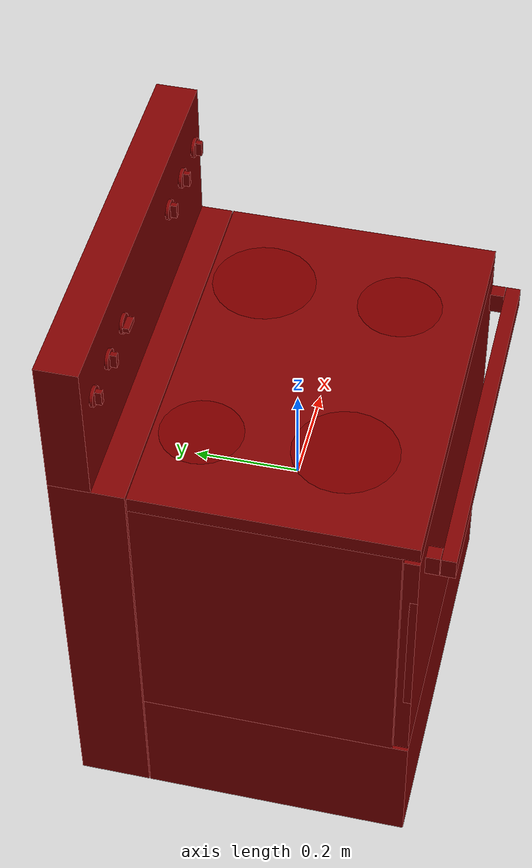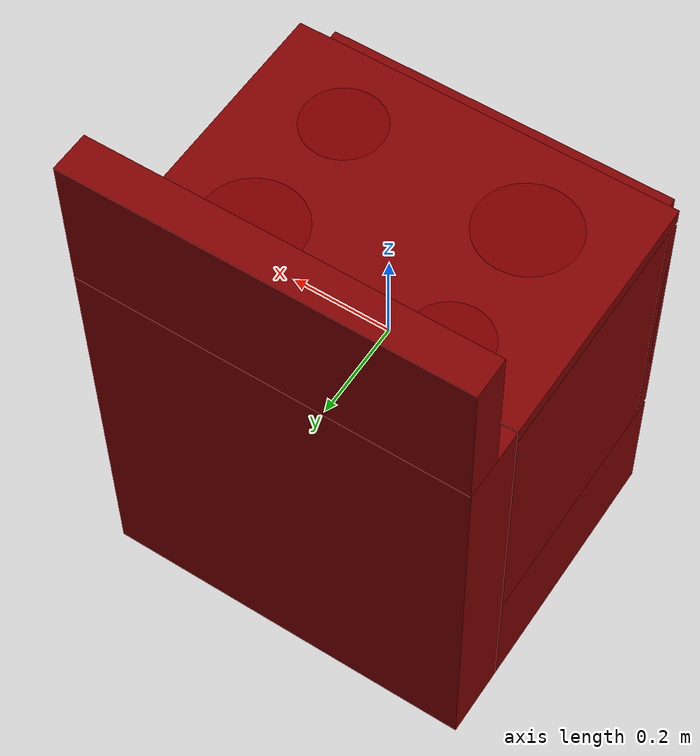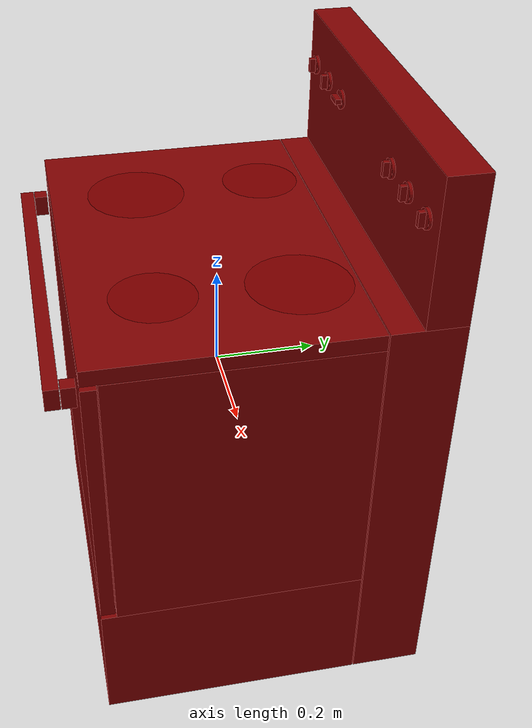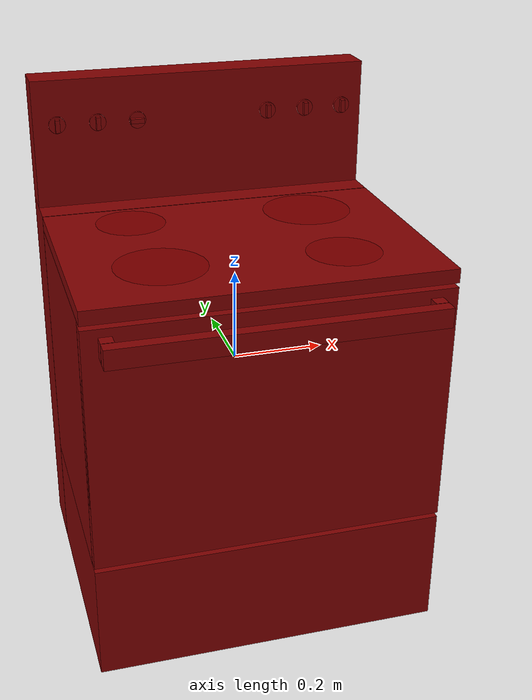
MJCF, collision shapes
<?xml version='1.0' encoding='UTF-8'?>
<mujoco model="model">
  <option timestep="0.002" gravity="0.0 0.0 -9.81"/>
  <compiler angle="radian"/>
  <asset>
    <mesh file="visuals/door.obj" name="door_vis"/>
    <mesh file="visuals/door_Clear.obj" name="door_Clear_vis"/>
    <mesh file="visuals/knob_front_left.obj" name="knob_front_left_vis"/>
    <mesh file="visuals/knob_front_right.obj" name="knob_front_right_vis"/>
    <mesh file="visuals/knob_rear_left.obj" name="knob_rear_left_vis"/>
    <mesh file="visuals/knob_rear_right.obj" name="knob_rear_right_vis"/>
    <mesh file="visuals/knob_temp.obj" name="knob_temp_vis"/>
    <mesh file="visuals/knob_time.obj" name="knob_time_vis"/>
    <mesh file="visuals/rack0.obj" name="rack0_vis"/>
    <mesh file="visuals/rack1.obj" name="rack1_vis"/>
    <mesh file="visuals/Body001.obj" name="Body001_vis"/>
    <texture file="visuals/T_BC001.png" name="Body001_material" type="2d"/>
    <material name="Body001_material" rgba="1 1 1 1.0" texture="Body001_material" shininess="0.1" specular="0.5"/>
    <texture file="visuals/T_BC001.png" name="door_material" type="2d"/>
    <material name="door_material" rgba="1 1 1 1.0" texture="door_material" shininess="0.1" specular="5"/>
    <material name="door_Clear_material" rgba="0.12735895812511444 0.12735895812511444 0.12735895812511444 0.8" shininess="0.5" specular="0.3103448502657381"/>
    <texture file="visuals/T_BC001.png" name="knob_front_left_material" type="2d"/>
    <material name="knob_front_left_material" rgba="1 1 1 1.0" texture="knob_front_left_material" shininess="0.1" specular="5"/>
    <texture file="visuals/T_BC001.png" name="knob_front_right_material" type="2d"/>
    <material name="knob_front_right_material" rgba="1 1 1 1.0" texture="knob_front_right_material" shininess="0.1" specular="5"/>
    <texture file="visuals/T_BC001.png" name="knob_rear_left_material" type="2d"/>
    <material name="knob_rear_left_material" rgba="1 1 1 1.0" texture="knob_rear_left_material" shininess="0.1" specular="5"/>
    <texture file="visuals/T_BC001.png" name="knob_rear_right_material" type="2d"/>
    <material name="knob_rear_right_material" rgba="1 1 1 1.0" texture="knob_rear_right_material" shininess="0.1" specular="5"/>
    <texture file="visuals/T_BC001.png" name="knob_temp_material" type="2d"/>
    <material name="knob_temp_material" rgba="1 1 1 1.0" texture="knob_temp_material" shininess="0.1" specular="5"/>
    <texture file="visuals/T_BC001.png" name="knob_time_material" type="2d"/>
    <material name="knob_time_material" rgba="1 1 1 1.0" texture="knob_time_material" shininess="0.1" specular="5"/>
    <texture file="visuals/T_BC001.png" name="rack0_material" type="2d"/>
    <material name="rack0_material" rgba="1 1 1 1.0" texture="rack0_material" shininess="0.1" specular="5"/>
    <texture file="visuals/T_BC001.png" name="rack1_material" type="2d"/>
    <material name="rack1_material" rgba="1 1 1 1.0" texture="rack1_material" shininess="0.1" specular="5"/>
  </asset>
  <default>
    <default class="visual">
      <geom conaffinity="0" contype="0" group="1" type="mesh"/>
    </default>
    <default class="collision">
      <geom group="0" rgba="0.5 0 0 0.5"/>
    </default>
    <default class="spawn">
      <geom group="0" rgba="1 1 1 0.5" contype="0" conaffinity="0"/>
      <site group="0" rgba="1 1 1 0.5"/>
    </default>
    <default class="region">
      <geom group="1" conaffinity="0" contype="0" rgba="0 1 0 0"/>
    </default>
  </default>
  <worldbody>
    <body>
      <body name="object">
        <geom mesh="Body001_vis" type="mesh" solimp="0.998 0.998 0.001" solref="0.001 1" friction="0.95 0.3 0.1" class="visual" material="Body001_material"/>
        <geom class="collision" type="box" pos="0.00000000 0.28773725 -0.13877900" size="0.3806391656398773 0.06934699416160583 0.4276793599128723" quat="1.0 0.0 0.0 0.0"/>
        <geom class="collision" type="box" pos="0.00000000 0.31810200 0.43091512" size="0.38063934445381165 0.03898267447948456 0.14246723055839539" quat="1.0 0.0 0.0 0.0"/>
        <geom class="collision" type="box" pos="0.00000000 -0.04190081 0.27361840" size="0.38063955307006836 0.2578233480453491 0.01528517808765173" quat="1.0 0.0 0.0 0.0"/>
        <geom class="collision" type="box" pos="0.00000000 -0.04190084 -0.43425706" size="0.3806397318840027 0.25782346725463867 0.1322038769721985" quat="1.0 0.0 0.0 0.0"/>
        <geom class="collision" type="box" pos="-0.34366122 -0.02676387 -0.02269453" size="0.036980871111154556 0.24268659949302673 0.2797034680843353" quat="1.0 0.0 0.0 0.0"/>
        <geom class="collision" type="box" pos="0.34331039 -0.02676387 -0.02269454" size="0.037331726402044296 0.2426867038011551 0.27970367670059204" quat="1.0 0.0 0.0 0.0"/>
        <geom class="collision" type="box" pos="0.00152631 -0.02676387 -0.25557634" size="0.3090246319770813 0.24268679320812225 0.04682393744587898" quat="1.0 0.0 0.0 0.0"/>
        <geom class="collision" type="box" pos="0.00152631 -0.02676387 0.21112446" size="0.3090248107910156 0.2426868975162506 0.04414474591612816" quat="1.0 0.0 0.0 0.0"/>
        <geom class="collision" type="box" pos="0.30031326 -0.01840548 0.10591764" size="0.005835832562297583 0.23432861268520355 0.008943891152739525" quat="1.0 0.0 0.0 0.0"/>
        <geom class="collision" type="box" pos="0.30031326 -0.01840548 0.01064280" size="0.005835835821926594 0.23432870209217072 0.006055808626115322" quat="1.0 0.0 0.0 0.0"/>
        <geom class="collision" type="box" pos="0.30031326 -0.01840548 -0.16668797" size="0.005835838615894318 0.23432880640029907 0.008943903259932995" quat="1.0 0.0 0.0 0.0"/>
        <geom class="collision" type="box" pos="0.30031326 -0.01840548 -0.07734233" size="0.005835841875523329 0.23432889580726624 0.006055814679712057" quat="1.0 0.0 0.0 0.0"/>
        <geom class="collision" type="box" pos="-0.30044070 -0.01840548 -0.07734233" size="0.005835844669491053 0.2343290001153946 0.006055817939341068" quat="1.0 0.0 0.0 0.0"/>
        <geom class="collision" type="box" pos="-0.30044070 -0.01840548 -0.16668797" size="0.005835847929120064 0.23432908952236176 0.008943920955061913" quat="1.0 0.0 0.0 0.0"/>
        <geom class="collision" type="box" pos="-0.30044070 -0.01840548 0.01064280" size="0.005835850723087788 0.23432917892932892 0.006055823992937803" quat="1.0 0.0 0.0 0.0"/>
        <geom class="collision" type="box" pos="-0.30044070 -0.01840548 0.10591764" size="0.005835853982716799 0.23432928323745728 0.008943933062255383" quat="1.0 0.0 0.0 0.0"/>
        <body name="door">
          <joint axis="1.0 0.0 0.0" pos="0.00047386 -0.29872564 -0.29060480" limited="true" name="door_joint" range="0.0 1.5707963267948966" type="hinge" damping="1" frictionloss="1" armature=".01" stiffness="0.05"/>
          <geom mesh="door_vis" type="mesh" solimp="0.998 0.998 0.001" solref="0.001 1" friction="0.95 0.3 0.1" class="visual" material="door_material"/>
          <geom class="collision" type="box" pos="0.00000001 -0.28556258 -0.02133653" size="0.3806423842906952 0.014163072220981121 0.2701687812805176" quat="1.0 0.0 0.0 0.0" name="door_main"/>
          <geom class="collision" type="box" pos="0.00000001 -0.29241508 -0.00293571" size="0.3806423842906952 0.007310488261282444 0.1463773250579834" quat="1.0 0.0 0.0 0.0"/>
          <geom class="collision" type="box" pos="-0.33332205 -0.31626445 0.21169895" size="0.01340613141655922 0.012864393182098866 0.021215109154582024" quat="1.0 0.0 0.0 0.0"/>
          <geom class="collision" type="box" pos="0.33292553 -0.31626445 0.21169895" size="0.013406133279204369 0.012864393182098866 0.021215109154582024" quat="1.0 0.0 0.0 0.0"/>
          <geom class="collision" type="box" pos="-0.00019825 -0.34403739 0.21169895" size="0.34652987122535706 0.013490837998688221 0.021215109154582024" quat="1.0 0.0 0.0 0.0" name="door_handle_main"/>
          <body name="door_Clear">
            <geom mesh="door_Clear_vis" type="mesh" solimp="0.998 0.998 0.001" solref="0.001 1" friction="0.95 0.3 0.1" class="visual" material="door_Clear_material"/>
            <geom class="collision" type="box" pos="0.00000001 -0.29241508 -0.00293571" size="0.3806423842906952 0.007310488261282444 0.1463773250579834" quat="1.0 0.0 0.0 0.0"/>
          </body>
        </body>
        <body name="knob_front_left">
          <joint axis="0.0 -1.0 0.0" pos="-0.32836023 0.27114728 0.47613841" limited="true" name="knob_front_left_joint" range="0.0 3.6651914291880923" type="hinge" damping="0.05" armature="1" frictionloss="0.75"/>
          <geom mesh="knob_front_left_vis" type="mesh" solimp="0.998 0.998 0.001" solref="0.001 1" friction="0.95 0.3 0.1" class="visual" material="knob_front_left_material"/>
          <geom class="collision" type="cylinder" pos="-0.32802793 0.27478260 0.47624242" size="0.018600063398480415 0.0029888267163187265" quat="0.7071067094802856 0.7071068286895752 0.0 0.0" friction="100 0.5 0.01"/>
          <geom class="collision" type="box" pos="-0.32804888 0.26617646 0.47623983" size="0.0049294340424239635 0.006057090125977993 0.013924617320299149" quat="1.0 0.0 0.0 0.0" name="knob_front_left_main" friction="100 0.5 0.01"/>
        </body>
        <body name="knob_front_right">
          <joint axis="0.0 -1.0 0.0" pos="0.33267894 0.27114728 0.47613841" limited="true" name="knob_front_right_joint" range="0.0 3.6651914291880923" type="hinge" damping="0.05" frictionloss="0.75" armature="1"/>
          <geom mesh="knob_front_right_vis" type="mesh" solimp="0.998 0.998 0.001" solref="0.001 1" friction="0.95 0.3 0.1" class="visual" material="knob_front_right_material"/>
          <geom class="collision" type="box" pos="0.33227965 0.26617646 0.47623983" size="0.0049294340424239635 0.006057090125977993 0.013924617320299149" quat="1.0 0.0 0.0 0.0" name="knob_front_right_main" friction="100 0.5 0.01"/>
          <geom class="collision" type="cylinder" pos="0.33230060 0.27478260 0.47624242" size="0.018600063398480415 0.0029888267163187265" quat="0.7071067094802856 0.7071068286895752 0.0 0.0" friction="100 0.5 0.01"/>
        </body>
        <body name="knob_rear_left">
          <joint axis="0.0 -1.0 0.0" pos="-0.23796098 0.27114728 0.47613841" limited="true" name="knob_rear_left_joint" range="0.0 3.6651914291880923" type="hinge" damping="0.05" armature="1" frictionloss="0.75"/>
          <geom mesh="knob_rear_left_vis" type="mesh" solimp="0.998 0.998 0.001" solref="0.001 1" friction="0.95 0.3 0.1" class="visual" material="knob_rear_left_material"/>
          <geom class="collision" type="box" pos="-0.23812278 0.26617646 0.47623983" size="0.0049294340424239635 0.006057090125977993 0.013924617320299149" quat="1.0 0.0 0.0 0.0" name="knob_rear_left_main" friction="100 0.5 0.01"/>
          <geom class="collision" type="cylinder" pos="-0.23810183 0.27478260 0.47624242" size="0.018600063398480415 0.0029888267163187265" quat="0.7071067094802856 0.7071068286895752 0.0 0.0" friction="100 0.5 0.01"/>
        </body>
        <body name="knob_rear_right">
          <joint axis="0.0 -1.0 0.0" pos="0.24363425 0.27114728 0.47613841" limited="true" name="knob_rear_right_joint" range="0.0 3.6651914291880923" type="hinge" damping="0.05" frictionloss="0.75" armature="1"/>
          <geom mesh="knob_rear_right_vis" type="mesh" solimp="0.998 0.998 0.001" solref="0.001 1" friction="0.95 0.3 0.1" class="visual" material="knob_rear_right_material"/>
          <geom class="collision" type="box" pos="0.24296705 0.26617646 0.47623983" size="0.0049294340424239635 0.006057090125977993 0.013924617320299149" quat="1.0 0.0 0.0 0.0" name="knob_rear_right_main" friction="100 0.5 0.01"/>
          <geom class="collision" type="cylinder" pos="0.24298801 0.27478260 0.47624242" size="0.018600063398480415 0.0029888267163187265" quat="0.7071067094802856 0.7071068286895752 0.0 0.0" friction="100 0.5 0.01"/>
        </body>
        <body name="knob_temp">
          <joint axis="0.0 1.0 0.0" pos="0.15376928 0.27114728 0.47613841" limited="true" name="knob_temp_joint" range="0.0 5.602506898901798" type="hinge" damping="0.05" armature="1" frictionloss="0.75"/>
          <geom mesh="knob_temp_vis" type="mesh" solimp="0.998 0.998 0.001" solref="0.001 1" friction="0.95 0.3 0.1" class="visual" material="knob_temp_material"/>
          <geom class="collision" type="box" pos="0.15340966 0.26617646 0.47623983" size="0.0049294340424239635 0.006057090125977993 0.013924617320299149" quat="1.0 0.0 0.0 0.0" name="knob_temp_main" friction="100 0.5 0.01"/>
          <geom class="collision" type="cylinder" pos="0.15343061 0.27478260 0.47624242" size="0.018600063398480415 0.0029888267163187265" quat="0.7071067094802856 0.7071068286895752 0.0 0.0" friction="100 0.5 0.01"/>
        </body>
        <body name="knob_time">
          <joint axis="0.0 1.0 0.0" pos="-0.14835897 0.27114728 0.47548491" limited="true" name="knob_time_joint" range="0.0 5.235987755982989" type="hinge" damping="0.05" armature="1" frictionloss="0.75"/>
          <geom mesh="knob_time_vis" type="mesh" solimp="0.998 0.998 0.001" solref="0.001 1" friction="0.95 0.3 0.1" class="visual" material="knob_time_material"/>
          <geom class="collision" type="box" pos="-0.15047948 0.26617646 0.47555688" size="0.015314821153879166 0.006057090125977993 0.0049294354394078255" quat="1.0 0.0 0.0 0.0" name="knob_time_main" friction="100 0.5 0.01"/>
          <geom class="collision" type="cylinder" pos="-0.14873384 0.27478260 0.47542113" size="0.018600063398480415 0.0029888267163187265" quat="0.7071067094802856 0.7071068286895752 0.0 0.0" friction="100 0.5 0.01"/>
        </body>
        <body name="rack0">
          <geom class="region" name="reg_rack0" type="box" pos="-7.514999999999605e-05 -0.05177400500000001 -0.02026579" size="0.29338473 0.204263845 0.039631"/>
          <joint axis="0.0 -1.0 0.0" pos="0.00002085 -0.05290608 -0.06526963" limited="true" name="rack0_joint" range="0.0 0.37" type="slide" damping="1" frictionloss="1" armature=".01" stiffness="0.05"/>
          <geom mesh="rack0_vis" type="mesh" solimp="0.998 0.998 0.001" solref="0.001 1" friction="0.95 0.3 0.1" class="visual" material="rack0_material"/>
          <geom class="collision" type="box" pos="-0.00039496 -0.05307997 -0.06457140" size="0.30155226588249207 0.20644082129001617 0.0038607490714639425" quat="1.0 0.0 0.0 0.0"/>
        </body>
        <body name="rack1">
          <geom class="region" name="reg_rack1" type="box" pos="-7.514999999999605e-05 -0.05177400500000001 0.09753503999999999" size="0.29338473 0.204263845 0.06800844"/>
          <joint axis="0.0 -1.0 0.0" pos="0.00002085 -0.05290608 0.02302140" limited="true" name="rack1_joint" range="0.0 0.37" type="slide" damping="1" frictionloss="1" armature=".01" stiffness="0.05"/>
          <geom mesh="rack1_vis" type="mesh" solimp="0.998 0.998 0.001" solref="0.001 1" friction="0.95 0.3 0.1" class="visual" material="rack1_material"/>
          <geom class="collision" type="box" pos="-0.00039496 -0.05307997 0.02392154" size="0.30155226588249207 0.20644082129001617 0.0038607490714639425" quat="1.0 0.0 0.0 0.0"/>
        </body>
        <geom class="region" name="reg_int" type="box" pos="0.00101271 -0.02609689000000001 -0.01940158" size="0.29183088 0.23750866 0.18363595"/>
        <site type="cylinder" rgba="0.5 0 0 0.5" size="0.09734878689050674 0.0001" pos="-0.18913718 -0.12916026 0.28895366" name="burner_on_front_left"/>
        <site type="cylinder" rgba="0.5 0 0 0.5" size="0.07675307989120483 0.0001" pos="-0.19991663 0.12864677 0.28895366" name="burner_on_rear_left"/>
        <site type="cylinder" rgba="0.5 0 0 0.5" size="0.07978937029838562 0.0001" pos="0.19051448 -0.15064779 0.28895366" name="burner_on_front_right"/>
        <site type="cylinder" rgba="0.5 0 0 0.5" size="0.09814763814210892 0.0001" pos="0.19729567 0.11031708 0.28895366" name="burner_on_rear_right"/>
        <site name="burner_front_left_place_site" type="cylinder" rgba="0.5 0 0 0" size="0.09734878689050674 4.999999873689376e-05" pos="-0.18913718 -0.12916026 0.28895366"/>
        <site name="burner_rear_left_place_site" type="cylinder" rgba="0.5 0 0 0" size="0.07675307989120483 4.999999873689376e-05" pos="-0.19991663 0.12864677 0.28895366"/>
        <site name="burner_front_right_place_site" type="cylinder" rgba="0.5 0 0 0" size="0.07978937029838562 4.999999873689376e-05" pos="0.19051448 -0.15064779 0.28895366"/>
        <site name="burner_rear_right_place_site" type="cylinder" rgba="0.5 0 0 0" size="0.09814763814210892 4.999999509891495e-05" pos="0.19729567 0.11031708 0.28895366"/>
        <geom class="region" name="reg_main" type="box" pos="-9.999999994736442e-09 0.028679709999999997 -0.13877899999999999" size="0.38164241 0.32940537999999997 0.42868264"/>
      </body>
    </body>
  </worldbody>
  <actuator>
    <motor name="door_joint_actuator" joint="door_joint" gear="50"/>
    <motor name="knob_front_left_joint_actuator" joint="knob_front_left_joint" gear="50"/>
    <motor name="knob_front_right_joint_actuator" joint="knob_front_right_joint" gear="50"/>
    <motor name="knob_rear_left_joint_actuator" joint="knob_rear_left_joint" gear="50"/>
    <motor name="knob_rear_right_joint_actuator" joint="knob_rear_right_joint" gear="50"/>
    <motor name="knob_temp_joint_actuator" joint="knob_temp_joint" gear="50"/>
    <motor name="knob_time_joint_actuator" joint="knob_time_joint" gear="50"/>
    <motor name="rack0_joint_actuator" joint="rack0_joint" gear="50"/>
    <motor name="rack1_joint_actuator" joint="rack1_joint" gear="50"/>
  </actuator>
</mujoco>
